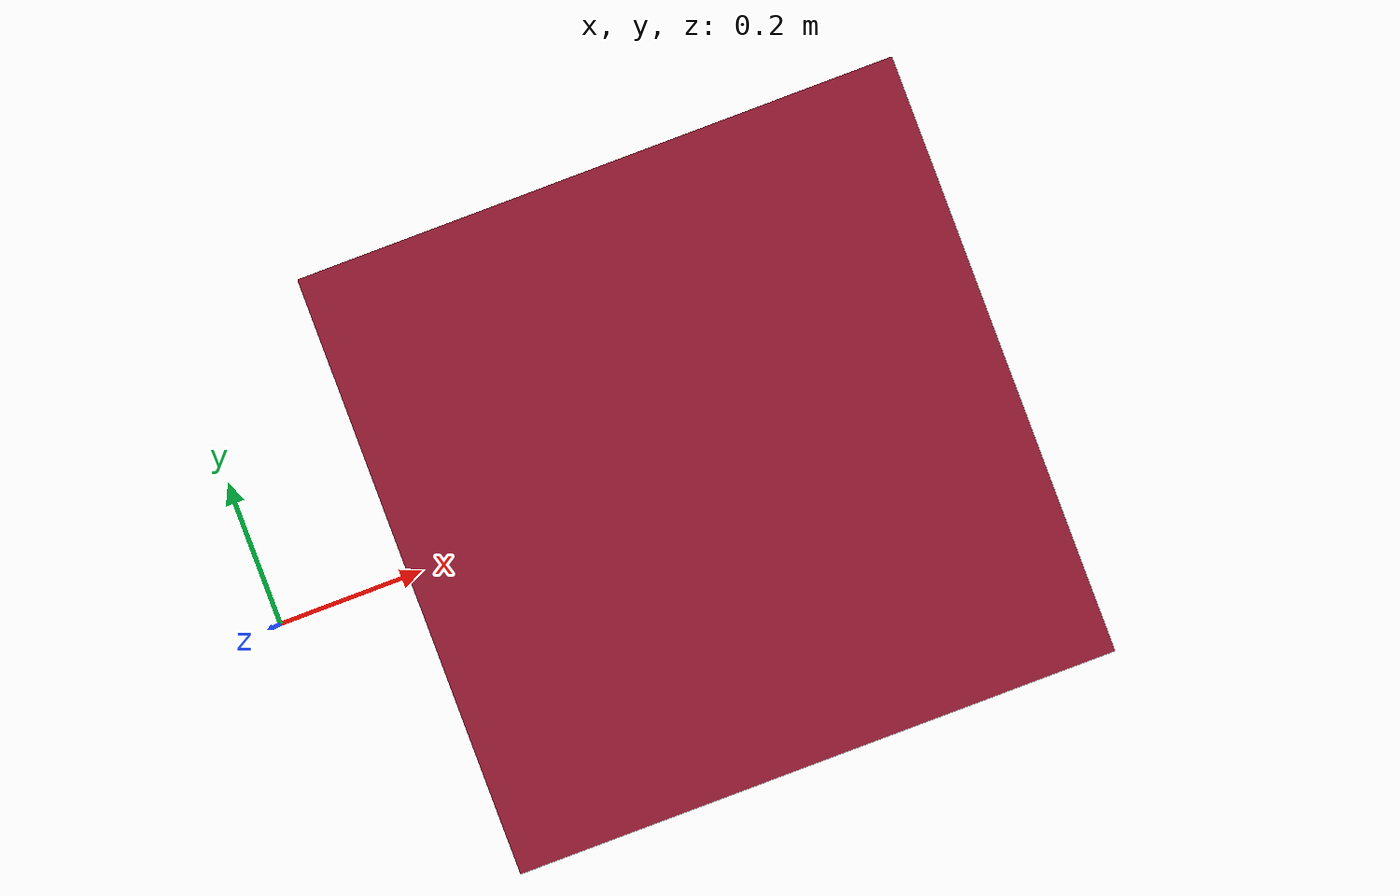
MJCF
<mujoco model="box">
    <worldbody>
        <body>
            <body name="object">
                <geom name="box_geom" pos="0.6 0. 0.15" type="box" size="0.4 0.4 0.15" friction="0.0000001 0.0000005 0.0000001" rgba="0.6 0.1 0.2 1" group="0"/>
            </body>
            <site rgba="0 0 0 0" size="0.005" pos="0 0 -0.05" name="bottom_site"/>
            <site rgba="0 0 0 0" size="0.005" pos="0 0 0.05" name="top_site"/>
            <site rgba="0 0 0 0" size="0.005" pos="0.05 0.05 0" name="horizontal_radius_site"/>
        </body>
    </worldbody>
</mujoco>
